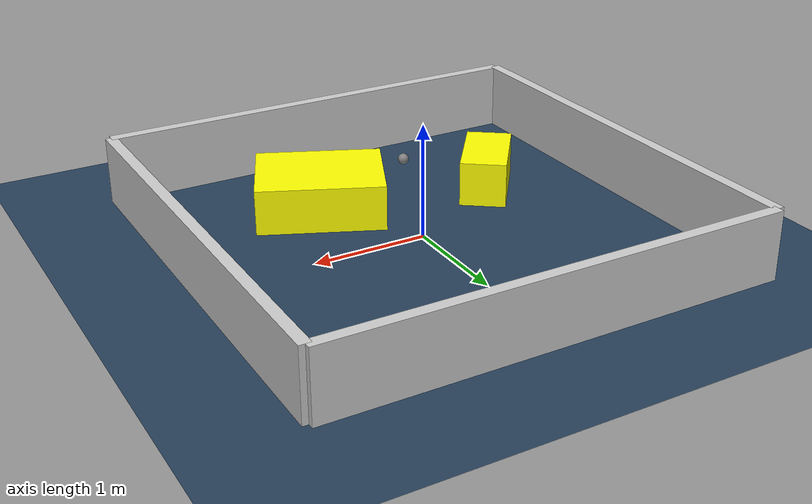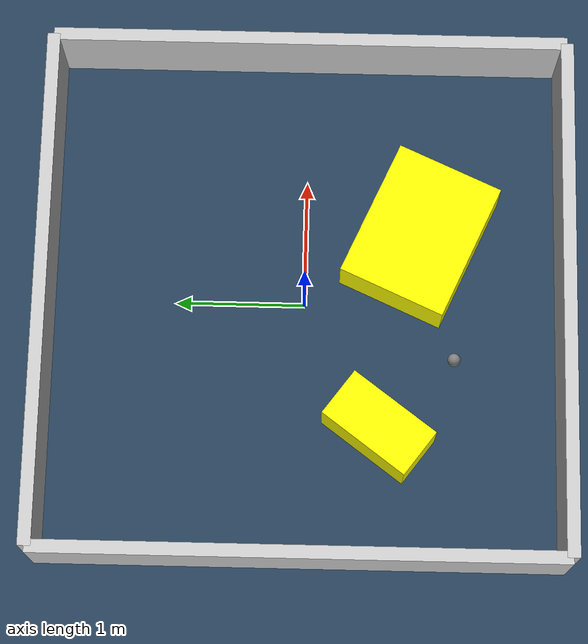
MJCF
<?xml version="1.0" ?>
<mujoco model="generated_environment">
  <option timestep="0.01" integrator="RK4" cone="elliptic"/>
  <default>
    <geom density="1"/>
  </default>
  <asset>
    <texture builtin="gradient" height="3072" rgb1="0.3 0.5 0.7" rgb2="0 0 0" type="skybox" width="512"/>
    <texture builtin="checker" height="300" mark="edge" markrgb="0.8 0.8 0.8" name="groundplane" rgb1="0.2 0.3 0.4" rgb2="0.1 0.2 0.3" type="2d" width="300"/>
    <material name="groundplane" reflectance="0.2" texrepeat="5 5" texture="groundplane" texuniform="true"/>
    <material name="robot" rgba="0.0 1.0 0.0 1"/>
  </asset>
  <worldbody>
    <light dir="0 0 -1" directional="true" pos="0 0 1.5"/>
    <geom condim="4" friction="1.0 0.005 0.001" material="groundplane" name="floor" size="0 0 0.05" type="plane"/>
    <body name="walls">
      <geom name="wall_1" condim="4" pos="-2.0 0.0 0.3" rgba="0.800000011920929 0.800000011920929 0.800000011920929 1.0" size="0.05 2.0 0.3" type="box"/>
      <geom name="wall_2" condim="4" pos="2.0 0.0 0.3" rgba="0.800000011920929 0.800000011920929 0.800000011920929 1.0" size="0.05 2.0 0.3" type="box"/>
      <geom name="wall_3" condim="4" pos="0.0 -2.0 0.3" rgba="0.800000011920929 0.800000011920929 0.800000011920929 1.0" size="2.0 0.05 0.3" type="box"/>
      <geom name="wall_4" condim="4" pos="0.0 2.0 0.3" rgba="0.800000011920929 0.800000011920929 0.800000011920929 1.0" size="2.0 0.05 0.3" type="box"/>
    </body>
    <body name="robot">
      <joint name="joint_x" type="slide" pos="0 0 0" axis="1 0 0"/>
      <joint name="joint_y" type="slide" pos="0 0 0" axis="0 1 0"/>
      <geom name="robot" type="sphere" pos="-0.45356491413765965 -1.1532748672009556 0.2" size="0.05" mass="5." friction="1.0 0.005 0.0001" condim="4"/>
      <site name="sensor_ball"/>
    </body>
    <body name="obstacle_1_movable">
      <geom name="obstacle_1_movable" condim="4" pos="0.5270310318071696 -0.8832439567460597 0.2" euler="0 0 65.84158870890147" friction="1.0 0.005 0.001" rgba="1 1 0 1" size="0.4278529674806053 0.553213426834904 0.2" type="box" mass="0.1"/>
      <joint type="free"/>
    </body>
    <body name="obstacle_2_movable">
      <geom name="obstacle_2_movable" condim="4" pos="-0.9906792471168637 -0.5793966388456273 0.2" euler="0 0 53.345883508152156" friction="1.0 0.005 0.001" rgba="1 1 0 1" size="0.3871578833271131 0.20445342529225996 0.2" type="box" mass="0.1"/>
      <joint type="free"/>
    </body>
  </worldbody>
  <actuator>
    <motor name="actuator_x" joint="joint_x" gear="1" ctrlrange="-1 1"/>
    <motor name="actuator_y" joint="joint_y" gear="1" ctrlrange="-1 1"/>
  </actuator>
</mujoco>
